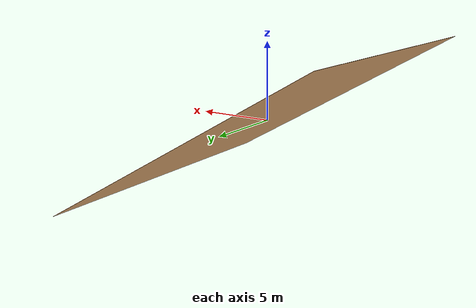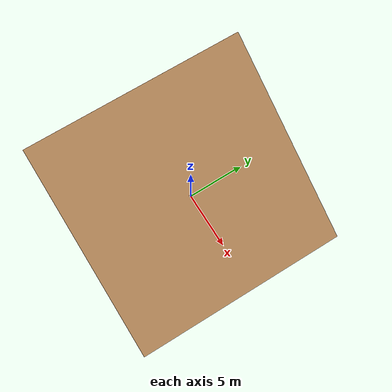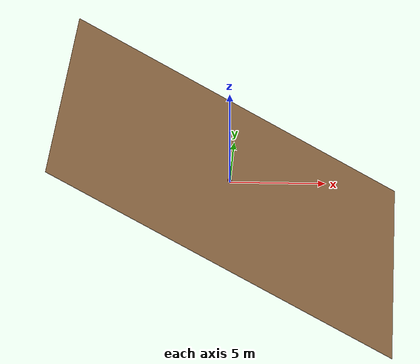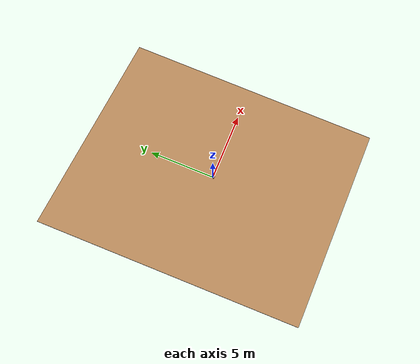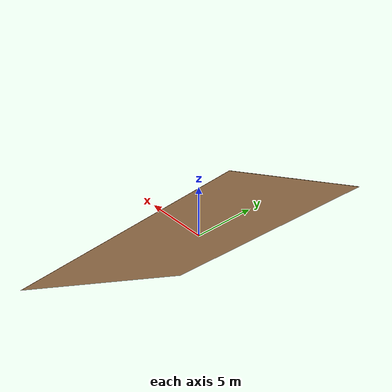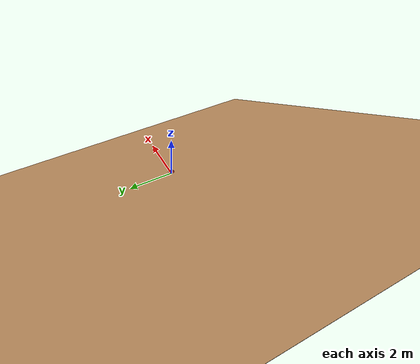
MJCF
<mujoco model="sliding_box">
  <compiler angle="degree" coordinate="local" inertiafromgeom="true"/>
  <option timestep="0.002" gravity="0 0 -9.81"/>
  <option noslip_iterations="5"/>

  <asset>
    <texture builtin="checker" height="100" name="texplane" rgb1="0.2 0.2 0.2" rgb2="0.8 0.8 0.8" type="2d" width="100"/>
    <material name="MatPlane" reflectance="0.2" shininess="0.1" specular="0.1" texrepeat="20 20" texture="texplane"/>
  </asset>

  <default>
    <geom condim="3" friction="1 0.05 0.01" rgba="0.8 0.6 0.4 1"/>
  </default>

  <worldbody>
    <light cutoff="100" diffuse="1 1 1" dir="-0 0 -1.3" directional="true" exponent="1" pos="0 0 3" specular=".1 .1 .1"/>
    <camera name="side" pos="-3 -3 2" euler="40 0 45"/>

    <!-- 45-degree inclined plane (tilted around Y) -->
    <geom name="slope" type="plane" pos="0 0 0" euler="0 30 0" size="10 10 1" material="MatPlane" conaffinity="1"/>

    <!-- Box initialized with same 45-degree orientation, slightly above the plane -->
    <body name="box" pos="0 0 0.1" euler="0 30 0">
      <joint name="free" type="free"/>
      <geom name="box_geom" type="box" size="0.1 0.1 0.04" rgba="0.8 0.2 0.2 1" contype="1" conaffinity="1"/>
    </body>
  </worldbody>
</mujoco>
